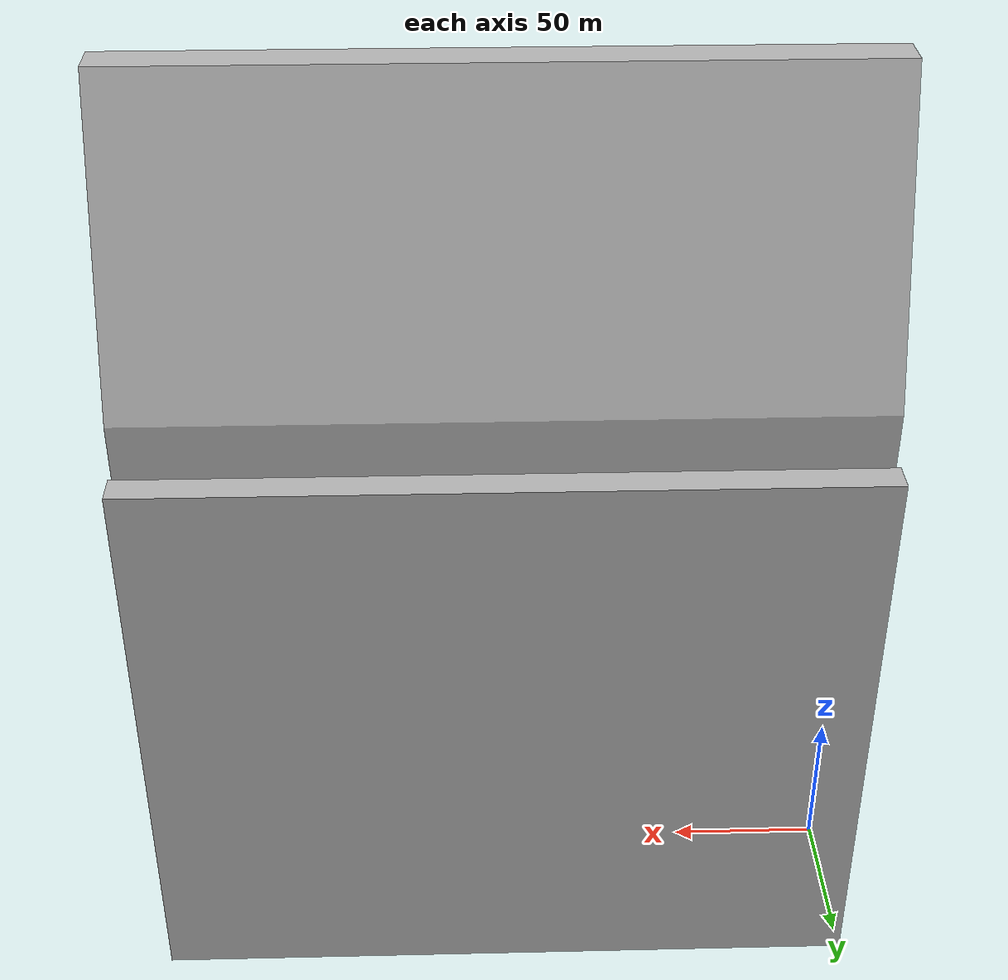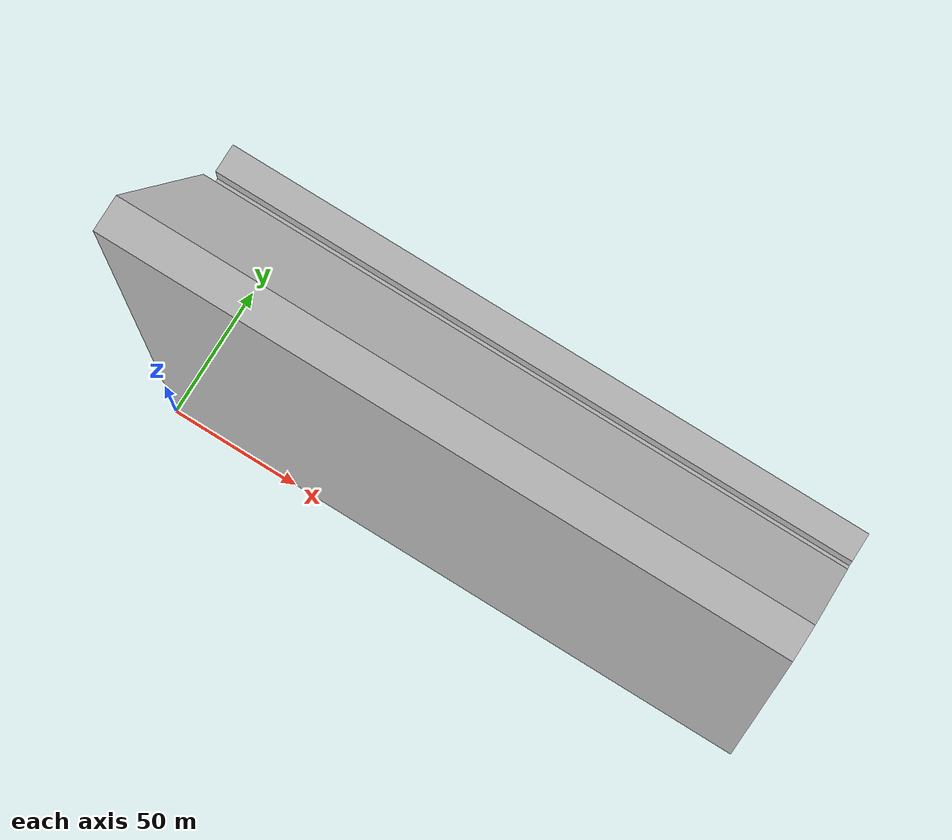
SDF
<?xml version='1.0'?>
<sdf version="1.4">
  <model name="scale">
    <pose>0 0 0.5 0 0 0</pose>
    <static>true</static>
    <link name="link">
      <collision name="collision">
        <geometry>
          <mesh>
            <uri>meshes/scale.dae</uri>
          <scale>1 1 1</scale>
          </mesh>
        </geometry>
      </collision>

      <visual name="visual">
        <geometry>
          <mesh>
            <uri>meshes/scale.dae</uri>
          <scale>1 1 1</scale>
          </mesh>
        </geometry>
      </visual>

    </link>
  </model>
</sdf>
